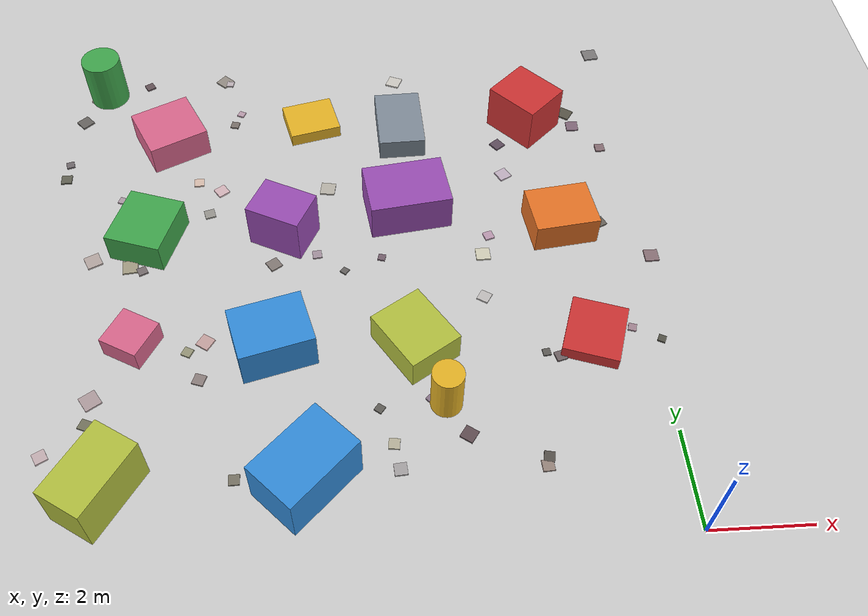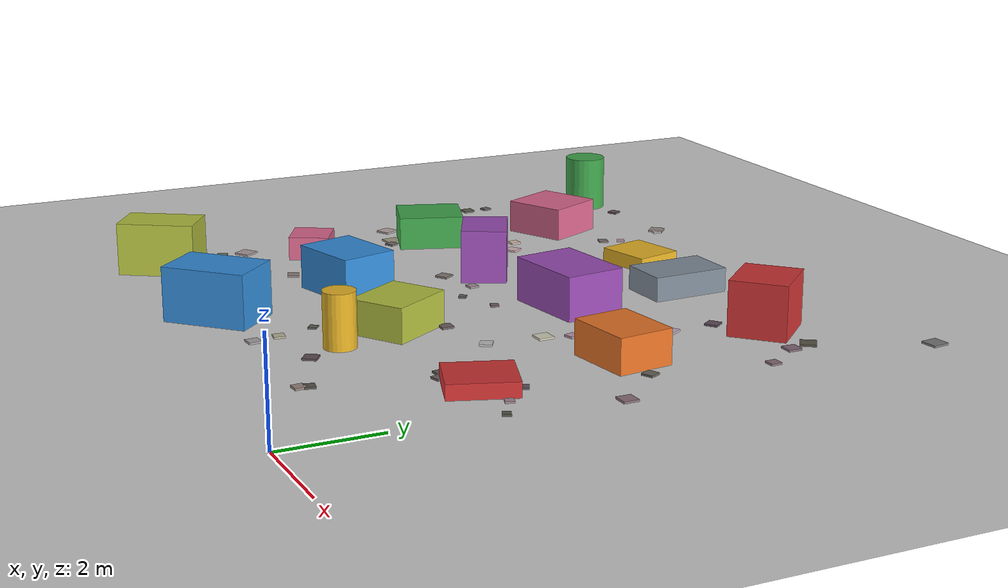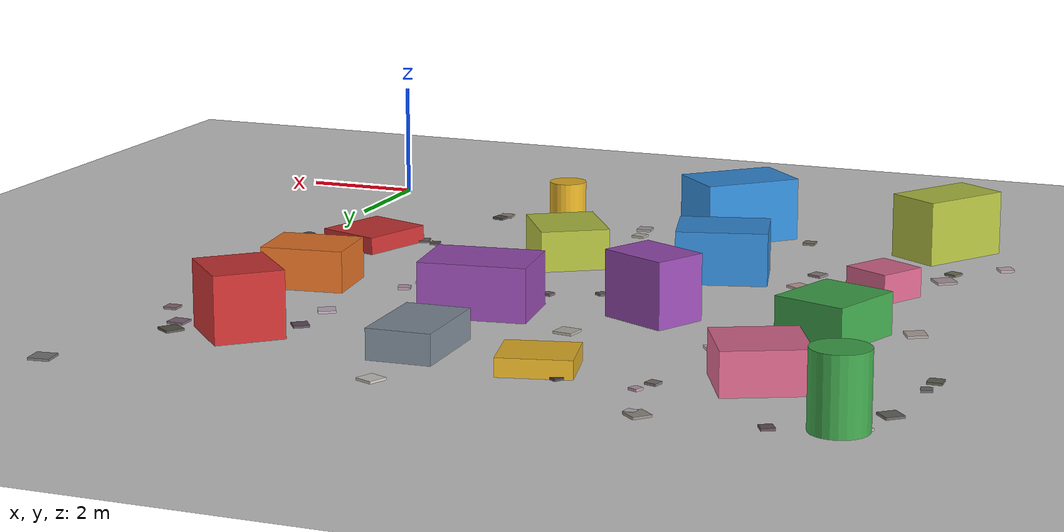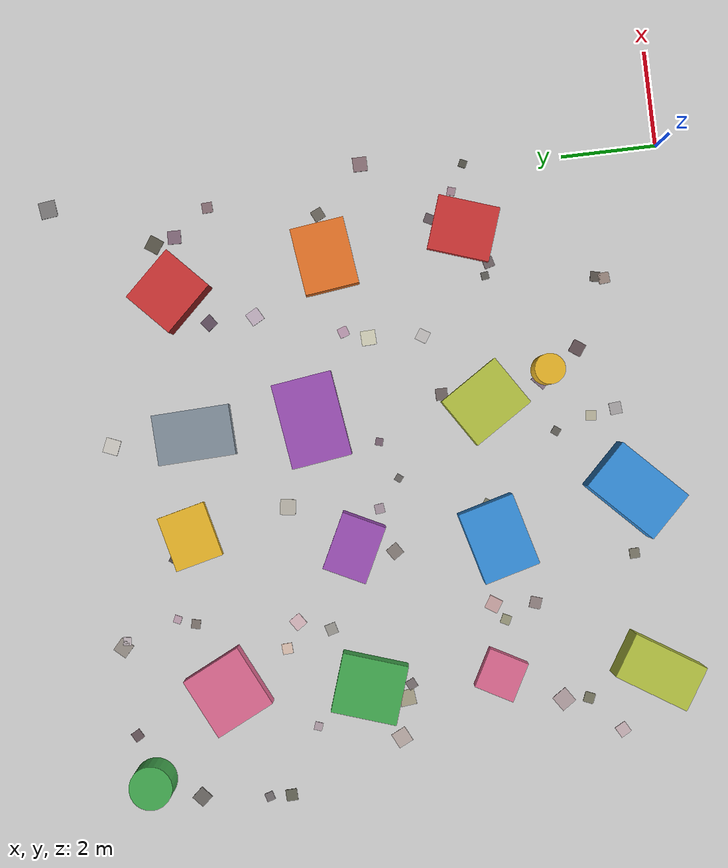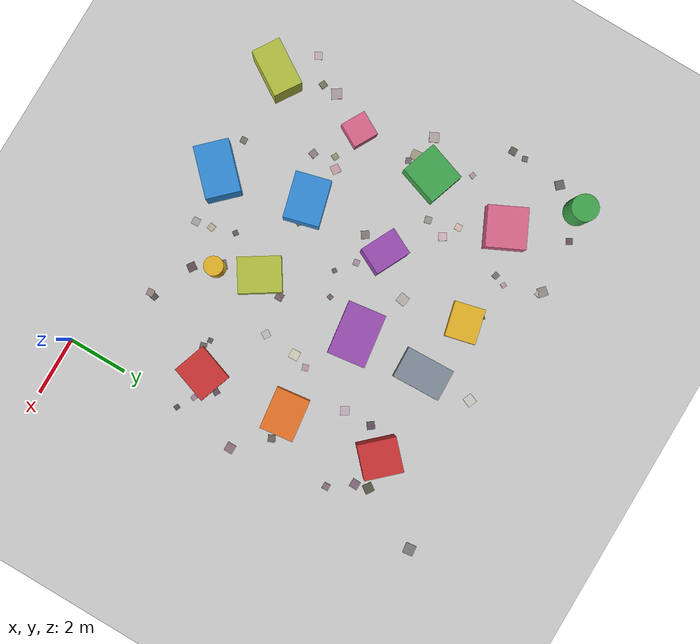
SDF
<sdf version="1.6">
 <world name="town_world">
  <model name="ground_plane">
   <static>true</static>
   <link name="link">
    <collision name="collision">
     <geometry><plane><normal>0 0 1</normal><size>60 60</size></plane></geometry>
     <surface><friction><ode><mu>1.0</mu><mu2>1.0</mu2></ode></friction></surface>
    </collision>
    <visual name="visual">
     <cast_shadows>false</cast_shadows>
     <geometry><plane><normal>0 0 1</normal><size>60 60</size></plane></geometry>
     <material>
      <script><uri>file://media/materials/scripts/gazebo.material</uri><name>Gazebo/CheckerBoard</name></script>
     </material>
    </visual>
   </link>
  </model>
  <model name="bld_4">
   <static>true</static>
   <pose>-10.88 1.31 0.55 0 0 1.003</pose>
   <link name="l">
    <collision name="c"><geometry><box><size>1.62 0.98 1.10</size></box></geometry></collision>
    <visual name="v">
     <geometry><box><size>1.62 0.98 1.10</size></box></geometry>
     <material><ambient>0.7 0.75 0.25 1</ambient><diffuse>0.7 0.75 0.25 1</diffuse></material>
    </visual>
   </link>
  </model>
  <model name="bld_5">
   <static>true</static>
   <pose>-10.63 4.55 0.25 0 0 1.068</pose>
   <link name="l">
    <collision name="c"><geometry><box><size>0.86 0.86 0.50</size></box></geometry></collision>
    <visual name="v">
     <geometry><box><size>0.86 0.86 0.50</size></box></geometry>
     <material><ambient>0.85 0.4 0.55 1</ambient><diffuse>0.85 0.4 0.55 1</diffuse></material>
    </visual>
   </link>
  </model>
  <model name="bld_6">
   <static>true</static>
   <pose>-10.57 7.31 0.35 0 0 1.247</pose>
   <link name="l">
    <collision name="c"><geometry><box><size>1.39 1.25 0.70</size></box></geometry></collision>
    <visual name="v">
     <geometry><box><size>1.39 1.25 0.70</size></box></geometry>
     <material><ambient>0.25 0.65 0.3 1</ambient><diffuse>0.25 0.65 0.3 1</diffuse></material>
    </visual>
   </link>
  </model>
  <model name="bld_7">
   <static>true</static>
   <pose>-10.30 10.24 0.35 0 0 0.452</pose>
   <link name="l">
    <collision name="c"><geometry><box><size>1.37 1.33 0.70</size></box></geometry></collision>
    <visual name="v">
     <geometry><box><size>1.37 1.33 0.70</size></box></geometry>
     <material><ambient>0.85 0.4 0.55 1</ambient><diffuse>0.85 0.4 0.55 1</diffuse></material>
    </visual>
   </link>
  </model>
  <model name="bld_12">
   <static>true</static>
   <pose>-7.11 1.35 0.55 0 0 0.775</pose>
   <link name="l">
    <collision name="c"><geometry><box><size>1.74 1.16 1.10</size></box></geometry></collision>
    <visual name="v">
     <geometry><box><size>1.74 1.16 1.10</size></box></geometry>
     <material><ambient>0.2 0.55 0.85 1</ambient><diffuse>0.2 0.55 0.85 1</diffuse></material>
    </visual>
   </link>
  </model>
  <model name="bld_13">
   <static>true</static>
   <pose>-7.78 4.29 0.45 0 0 0.261</pose>
   <link name="l">
    <collision name="c"><geometry><box><size>1.54 1.20 0.90</size></box></geometry></collision>
    <visual name="v">
     <geometry><box><size>1.54 1.20 0.90</size></box></geometry>
     <material><ambient>0.2 0.55 0.85 1</ambient><diffuse>0.2 0.55 0.85 1</diffuse></material>
    </visual>
   </link>
  </model>
  <model name="bld_14">
   <static>true</static>
   <pose>-7.60 7.28 0.55 0 0 1.109</pose>
   <link name="l">
    <collision name="c"><geometry><box><size>0.94 1.23 1.10</size></box></geometry></collision>
    <visual name="v">
     <geometry><box><size>0.94 1.23 1.10</size></box></geometry>
     <material><ambient>0.6 0.3 0.7 1</ambient><diffuse>0.6 0.3 0.7 1</diffuse></material>
    </visual>
   </link>
  </model>
  <model name="bld_15">
   <static>true</static>
   <pose>-7.01 10.68 0.15 0 0 0.238</pose>
   <link name="l">
    <collision name="c"><geometry><box><size>1.18 1.03 0.30</size></box></geometry></collision>
    <visual name="v">
     <geometry><box><size>1.18 1.03 0.30</size></box></geometry>
     <material><ambient>0.9 0.7 0.15 1</ambient><diffuse>0.9 0.7 0.15 1</diffuse></material>
    </visual>
   </link>
  </model>
  <model name="bld_21">
   <static>true</static>
   <pose>-4.93 4.21 0.35 0 0 0.572</pose>
   <link name="l">
    <collision name="c"><geometry><box><size>1.18 1.43 0.70</size></box></geometry></collision>
    <visual name="v">
     <geometry><box><size>1.18 1.43 0.70</size></box></geometry>
     <material><ambient>0.7 0.75 0.25 1</ambient><diffuse>0.7 0.75 0.25 1</diffuse></material>
    </visual>
   </link>
  </model>
  <model name="bld_22">
   <static>true</static>
   <pose>-4.88 7.85 0.45 0 0 0.135</pose>
   <link name="l">
    <collision name="c"><geometry><box><size>1.79 1.27 0.90</size></box></geometry></collision>
    <visual name="v">
     <geometry><box><size>1.79 1.27 0.90</size></box></geometry>
     <material><ambient>0.6 0.3 0.7 1</ambient><diffuse>0.6 0.3 0.7 1</diffuse></material>
    </visual>
   </link>
  </model>
  <model name="bld_23">
   <static>true</static>
   <pose>-4.90 10.34 0.25 0 0 0.036</pose>
   <link name="l">
    <collision name="c"><geometry><box><size>1.06 1.63 0.50</size></box></geometry></collision>
    <visual name="v">
     <geometry><box><size>1.06 1.63 0.50</size></box></geometry>
     <material><ambient>0.5 0.55 0.6 1</ambient><diffuse>0.5 0.55 0.6 1</diffuse></material>
    </visual>
   </link>
  </model>
  <model name="bld_27">
   <static>true</static>
   <pose>-1.26 4.23 0.15 0 0 1.240</pose>
   <link name="l">
    <collision name="c"><geometry><box><size>1.32 1.16 0.30</size></box></geometry></collision>
    <visual name="v">
     <geometry><box><size>1.32 1.16 0.30</size></box></geometry>
     <material><ambient>0.8 0.2 0.2 1</ambient><diffuse>0.8 0.2 0.2 1</diffuse></material>
    </visual>
   </link>
  </model>
  <model name="bld_28">
   <static>true</static>
   <pose>-1.53 7.19 0.35 0 0 0.126</pose>
   <link name="l">
    <collision name="c"><geometry><box><size>1.41 1.14 0.70</size></box></geometry></collision>
    <visual name="v">
     <geometry><box><size>1.41 1.14 0.70</size></box></geometry>
     <material><ambient>0.9 0.45 0.15 1</ambient><diffuse>0.9 0.45 0.15 1</diffuse></material>
    </visual>
   </link>
  </model>
  <model name="bld_29">
   <static>true</static>
   <pose>-1.90 10.47 0.55 0 0 0.753</pose>
   <link name="l">
    <collision name="c"><geometry><box><size>1.14 1.28 1.10</size></box></geometry></collision>
    <visual name="v">
     <geometry><box><size>1.14 1.28 1.10</size></box></geometry>
     <material><ambient>0.8 0.2 0.2 1</ambient><diffuse>0.8 0.2 0.2 1</diffuse></material>
    </visual>
   </link>
  </model>
  <model name="landmark_3">
   <static>true</static>
   <pose>-12.00 12.00 0.60 0 0 0</pose>
   <link name="l">
    <collision name="c">
     <geometry><cylinder><radius>0.45</radius><length>1.20</length></cylinder></geometry>
    </collision>
    <visual name="v">
     <geometry><cylinder><radius>0.45</radius><length>1.20</length></cylinder></geometry>
     <material><ambient>0.25 0.65 0.3 1</ambient><diffuse>0.25 0.65 0.3 1</diffuse></material>
    </visual>
   </link>
  </model>
  <model name="tank_8">
   <static>true</static>
   <pose>-4.41 2.85 0.55 0 0 0</pose>
   <link name="l">
    <collision name="c">
     <geometry><cylinder><radius>0.32</radius><length>1.10</length></cylinder></geometry>
    </collision>
    <visual name="v">
     <geometry><cylinder><radius>0.32</radius><length>1.10</length></cylinder></geometry>
     <material><ambient>0.9 0.7 0.15 1</ambient><diffuse>0.9 0.7 0.15 1</diffuse></material>
    </visual>
   </link>
  </model>
  <model name="ft_6">
   <static>true</static>
   <pose>-6.90 6.67 0.02 0 0 0.120</pose>
   <link name="l">
    <collision name="c"><geometry><box><size>0.20 0.20 0.04</size></box></geometry></collision>
    <visual name="v">
     <geometry><box><size>0.20 0.20 0.04</size></box></geometry>
     <material>
      <ambient>0.6399593680012304 0.5708872816822584 0.620188623328072 1</ambient>
      <diffuse>0.6399593680012304 0.5708872816822584 0.620188623328072 1</diffuse>
     </material>
    </visual>
   </link>
  </model>
  <model name="ft_11">
   <static>true</static>
   <pose>0.17 12.86 0.02 0 0 0.117</pose>
   <link name="l">
    <collision name="c"><geometry><box><size>0.35 0.35 0.04</size></box></geometry></collision>
    <visual name="v">
     <geometry><box><size>0.35 0.35 0.04</size></box></geometry>
     <material>
      <ambient>0.48210900817738717 0.47406306957370253 0.4754111695139394 1</ambient>
      <diffuse>0.48210900817738717 0.47406306957370253 0.4754111695139394 1</diffuse>
     </material>
    </visual>
   </link>
  </model>
  <model name="ft_12">
   <static>true</static>
   <pose>-10.65 6.43 0.02 0 0 0.439</pose>
   <link name="l">
    <collision name="c"><geometry><box><size>0.20 0.20 0.04</size></box></geometry></collision>
    <visual name="v">
     <geometry><box><size>0.20 0.20 0.04</size></box></geometry>
     <material>
      <ambient>0.46573214590223905 0.428787080923408 0.4314233538779299 1</ambient>
      <diffuse>0.46573214590223905 0.428787080923408 0.4314233538779299 1</diffuse>
     </material>
    </visual>
   </link>
  </model>
  <model name="ft_19">
   <static>true</static>
   <pose>-2.60 9.77 0.02 0 0 0.645</pose>
   <link name="l">
    <collision name="c"><geometry><box><size>0.26 0.26 0.04</size></box></geometry></collision>
    <visual name="v">
     <geometry><box><size>0.26 0.26 0.04</size></box></geometry>
     <material>
      <ambient>0.37206148826884883 0.3036451026613469 0.3671104922487789 1</ambient>
      <diffuse>0.37206148826884883 0.3036451026613469 0.3671104922487789 1</diffuse>
     </material>
    </visual>
   </link>
  </model>
  <model name="ft_22">
   <static>true</static>
   <pose>-0.44 4.39 0.02 0 0 1.275</pose>
   <link name="l">
    <collision name="c"><geometry><box><size>0.17 0.17 0.04</size></box></geometry></collision>
    <visual name="v">
     <geometry><box><size>0.17 0.17 0.04</size></box></geometry>
     <material>
      <ambient>0.6359230197742147 0.5182989579219701 0.5724076381204705 1</ambient>
      <diffuse>0.6359230197742147 0.5182989579219701 0.5724076381204705 1</diffuse>
     </material>
    </visual>
   </link>
  </model>
  <model name="ft_24">
   <static>true</static>
   <pose>-8.46 1.45 0.02 0 0 0.032</pose>
   <link name="l">
    <collision name="c"><geometry><box><size>0.21 0.21 0.04</size></box></geometry></collision>
    <visual name="v">
     <geometry><box><size>0.21 0.21 0.04</size></box></geometry>
     <material>
      <ambient>0.4709832009301672 0.4530254069300979 0.3958276431859622 1</ambient>
      <diffuse>0.4709832009301672 0.4530254069300979 0.3958276431859622 1</diffuse>
     </material>
    </visual>
   </link>
  </model>
  <model name="ft_30">
   <static>true</static>
   <pose>-9.05 12.27 0.02 0 0 1.405</pose>
   <link name="l">
    <collision name="c"><geometry><box><size>0.17 0.17 0.04</size></box></geometry></collision>
    <visual name="v">
     <geometry><box><size>0.17 0.17 0.04</size></box></geometry>
     <material>
      <ambient>0.7452372106391278 0.7006725788215511 0.722359697576769 1</ambient>
      <diffuse>0.7452372106391278 0.7006725788215511 0.722359697576769 1</diffuse>
     </material>
    </visual>
   </link>
  </model>
  <model name="ft_31">
   <static>true</static>
   <pose>-10.79 7.20 0.02 0 0 1.123</pose>
   <link name="l">
    <collision name="c"><geometry><box><size>0.15 0.15 0.04</size></box></geometry></collision>
    <visual name="v">
     <geometry><box><size>0.15 0.15 0.04</size></box></geometry>
     <material>
      <ambient>0.32539106264372236 0.2973672315962051 0.2627592527350926 1</ambient>
      <diffuse>0.32539106264372236 0.2973672315962051 0.2627592527350926 1</diffuse>
     </material>
    </visual>
   </link>
  </model>
  <model name="ft_35">
   <static>true</static>
   <pose>-2.29 3.89 0.02 0 0 0.127</pose>
   <link name="l">
    <collision name="c"><geometry><box><size>0.16 0.16 0.04</size></box></geometry></collision>
    <visual name="v">
     <geometry><box><size>0.16 0.16 0.04</size></box></geometry>
     <material>
      <ambient>0.3664691351278584 0.3580292428510184 0.3406087536675115 1</ambient>
      <diffuse>0.3664691351278584 0.3580292428510184 0.3406087536675115 1</diffuse>
     </material>
    </visual>
   </link>
  </model>
  <model name="ft_44">
   <static>true</static>
   <pose>-3.12 6.99 0.02 0 0 0.307</pose>
   <link name="l">
    <collision name="c"><geometry><box><size>0.21 0.21 0.04</size></box></geometry></collision>
    <visual name="v">
     <geometry><box><size>0.21 0.21 0.04</size></box></geometry>
     <material>
      <ambient>0.7323617477675497 0.5987438500683856 0.6891899730458133 1</ambient>
      <diffuse>0.7323617477675497 0.5987438500683856 0.6891899730458133 1</diffuse>
     </material>
    </visual>
   </link>
  </model>
  <model name="ft_47">
   <static>true</static>
   <pose>-11.37 2.75 0.02 0 0 1.172</pose>
   <link name="l">
    <collision name="c"><geometry><box><size>0.22 0.22 0.04</size></box></geometry></collision>
    <visual name="v">
     <geometry><box><size>0.22 0.22 0.04</size></box></geometry>
     <material>
      <ambient>0.4509825481073093 0.4468120801494546 0.3647173041535964 1</ambient>
      <diffuse>0.4509825481073093 0.4468120801494546 0.3647173041535964 1</diffuse>
     </material>
    </visual>
   </link>
  </model>
  <model name="ft_49">
   <static>true</static>
   <pose>-11.30 8.48 0.02 0 0 1.240</pose>
   <link name="l">
    <collision name="c"><geometry><box><size>0.17 0.17 0.04</size></box></geometry></collision>
    <visual name="v">
     <geometry><box><size>0.17 0.17 0.04</size></box></geometry>
     <material>
      <ambient>0.6793427122687294 0.6067541155414101 0.64895662002616 1</ambient>
      <diffuse>0.6793427122687294 0.6067541155414101 0.64895662002616 1</diffuse>
     </material>
    </visual>
   </link>
  </model>
  <model name="ft_68">
   <static>true</static>
   <pose>-9.30 7.97 0.02 0 0 0.270</pose>
   <link name="l">
    <collision name="c"><geometry><box><size>0.23 0.23 0.04</size></box></geometry></collision>
    <visual name="v">
     <geometry><box><size>0.23 0.23 0.04</size></box></geometry>
     <material>
      <ambient>0.593718704382455 0.5850774325610297 0.562518660428268 1</ambient>
      <diffuse>0.593718704382455 0.5850774325610297 0.562518660428268 1</diffuse>
     </material>
    </visual>
   </link>
  </model>
  <model name="ft_78">
   <static>true</static>
   <pose>0.11 4.08 0.02 0 0 1.131</pose>
   <link name="l">
    <collision name="c"><geometry><box><size>0.16 0.16 0.04</size></box></geometry></collision>
    <visual name="v">
     <geometry><box><size>0.16 0.16 0.04</size></box></geometry>
     <material>
      <ambient>0.32816257960606077 0.3230515126131668 0.28312068051801964 1</ambient>
      <diffuse>0.32816257960606077 0.3230515126131668 0.28312068051801964 1</diffuse>
     </material>
    </visual>
   </link>
  </model>
  <model name="ft_79">
   <static>true</static>
   <pose>-10.92 6.55 0.02 0 0 0.104</pose>
   <link name="l">
    <collision name="c"><geometry><box><size>0.33 0.33 0.04</size></box></geometry></collision>
    <visual name="v">
     <geometry><box><size>0.33 0.33 0.04</size></box></geometry>
     <material>
      <ambient>0.6416473937818465 0.6139593812491926 0.5166360644461299 1</ambient>
      <diffuse>0.6416473937818465 0.6139593812491926 0.5166360644461299 1</diffuse>
     </material>
    </visual>
   </link>
  </model>
  <model name="ft_82">
   <static>true</static>
   <pose>-4.58 2.95 0.02 0 0 0.754</pose>
   <link name="l">
    <collision name="c"><geometry><box><size>0.33 0.33 0.04</size></box></geometry></collision>
    <visual name="v">
     <geometry><box><size>0.33 0.33 0.04</size></box></geometry>
     <material>
      <ambient>0.5238417035798979 0.44570143089803693 0.5201043860301521 1</ambient>
      <diffuse>0.5238417035798979 0.44570143089803693 0.5201043860301521 1</diffuse>
     </material>
    </visual>
   </link>
  </model>
  <model name="ft_88">
   <static>true</static>
   <pose>-4.94 12.11 0.02 0 0 1.173</pose>
   <link name="l">
    <collision name="c"><geometry><box><size>0.32 0.32 0.04</size></box></geometry></collision>
    <visual name="v">
     <geometry><box><size>0.32 0.32 0.04</size></box></geometry>
     <material>
      <ambient>0.8070755347476833 0.7902436484356474 0.7639839601656194 1</ambient>
      <diffuse>0.8070755347476833 0.7902436484356474 0.7639839601656194 1</diffuse>
     </material>
    </visual>
   </link>
  </model>
  <model name="ft_97">
   <static>true</static>
   <pose>-11.34 3.28 0.02 0 0 0.589</pose>
   <link name="l">
    <collision name="c"><geometry><box><size>0.35 0.35 0.04</size></box></geometry></collision>
    <visual name="v">
     <geometry><box><size>0.35 0.35 0.04</size></box></geometry>
     <material>
      <ambient>0.6845836450888552 0.6131028805730561 0.6213837513433169 1</ambient>
      <diffuse>0.6845836450888552 0.6131028805730561 0.6213837513433169 1</diffuse>
     </material>
    </visual>
   </link>
  </model>
  <model name="ft_98">
   <static>true</static>
   <pose>-1.65 10.72 0.02 0 0 0.410</pose>
   <link name="l">
    <collision name="c"><geometry><box><size>0.17 0.17 0.04</size></box></geometry></collision>
    <visual name="v">
     <geometry><box><size>0.17 0.17 0.04</size></box></geometry>
     <material>
      <ambient>0.643318756457361 0.5372215628203274 0.6428826478869336 1</ambient>
      <diffuse>0.643318756457361 0.5372215628203274 0.6428826478869336 1</diffuse>
     </material>
    </visual>
   </link>
  </model>
  <model name="ft_102">
   <static>true</static>
   <pose>-8.86 10.79 0.02 0 0 1.338</pose>
   <link name="l">
    <collision name="c"><geometry><box><size>0.19 0.19 0.04</size></box></geometry></collision>
    <visual name="v">
     <geometry><box><size>0.19 0.19 0.04</size></box></geometry>
     <material>
      <ambient>0.48322430697927055 0.44468532462418847 0.4232512352843846 1</ambient>
      <diffuse>0.48322430697927055 0.44468532462418847 0.4232512352843846 1</diffuse>
     </material>
    </visual>
   </link>
  </model>
  <model name="ft_104">
   <static>true</static>
   <pose>-12.31 11.85 0.02 0 0 0.919</pose>
   <link name="l">
    <collision name="c"><geometry><box><size>0.20 0.20 0.04</size></box></geometry></collision>
    <visual name="v">
     <geometry><box><size>0.20 0.20 0.04</size></box></geometry>
     <material>
      <ambient>0.7808552234221287 0.7479347410262451 0.6858349901105885 1</ambient>
      <diffuse>0.7808552234221287 0.7479347410262451 0.6858349901105885 1</diffuse>
     </material>
    </visual>
   </link>
  </model>
  <model name="ft_111">
   <static>true</static>
   <pose>-11.74 6.76 0.02 0 0 0.452</pose>
   <link name="l">
    <collision name="c"><geometry><box><size>0.33 0.33 0.04</size></box></geometry></collision>
    <visual name="v">
     <geometry><box><size>0.33 0.33 0.04</size></box></geometry>
     <material>
      <ambient>0.7115425018846951 0.6549049096928533 0.6369846277514232 1</ambient>
      <diffuse>0.7115425018846951 0.6549049096928533 0.6369846277514232 1</diffuse>
     </material>
    </visual>
   </link>
  </model>
  <model name="ft_114">
   <static>true</static>
   <pose>-5.50 6.51 0.02 0 0 1.296</pose>
   <link name="l">
    <collision name="c"><geometry><box><size>0.16 0.16 0.04</size></box></geometry></collision>
    <visual name="v">
     <geometry><box><size>0.16 0.16 0.04</size></box></geometry>
     <material>
      <ambient>0.45868220250676417 0.3757239311606276 0.43072166424103153 1</ambient>
      <diffuse>0.45868220250676417 0.3757239311606276 0.43072166424103153 1</diffuse>
     </material>
    </visual>
   </link>
  </model>
  <model name="ft_118">
   <static>true</static>
   <pose>-2.02 3.79 0.02 0 0 0.269</pose>
   <link name="l">
    <collision name="c"><geometry><box><size>0.22 0.22 0.04</size></box></geometry></collision>
    <visual name="v">
     <geometry><box><size>0.22 0.22 0.04</size></box></geometry>
     <material>
      <ambient>0.43188461778996323 0.3824822743025664 0.3925776729018858 1</ambient>
      <diffuse>0.43188461778996323 0.3824822743025664 0.3925776729018858 1</diffuse>
     </material>
    </visual>
   </link>
  </model>
  <model name="ft_120">
   <static>true</static>
   <pose>-12.12 2.12 0.02 0 0 0.508</pose>
   <link name="l">
    <collision name="c"><geometry><box><size>0.25 0.25 0.04</size></box></geometry></collision>
    <visual name="v">
     <geometry><box><size>0.25 0.25 0.04</size></box></geometry>
     <material>
      <ambient>0.7707989357848736 0.6860583146863722 0.7020029701287273 1</ambient>
      <diffuse>0.7707989357848736 0.6860583146863722 0.7020029701287273 1</diffuse>
     </material>
    </visual>
   </link>
  </model>
  <model name="ft_121">
   <static>true</static>
   <pose>-0.96 4.92 0.02 0 0 1.094</pose>
   <link name="l">
    <collision name="c"><geometry><box><size>0.20 0.20 0.04</size></box></geometry></collision>
    <visual name="v">
     <geometry><box><size>0.20 0.20 0.04</size></box></geometry>
     <material>
      <ambient>0.3886146759661602 0.33685537879727584 0.36084434366437584 1</ambient>
      <diffuse>0.3886146759661602 0.33685537879727584 0.36084434366437584 1</diffuse>
     </material>
    </visual>
   </link>
  </model>
  <model name="ft_126">
   <static>true</static>
   <pose>-12.67 9.21 0.02 0 0 0.035</pose>
   <link name="l">
    <collision name="c"><geometry><box><size>0.24 0.24 0.04</size></box></geometry></collision>
    <visual name="v">
     <geometry><box><size>0.24 0.24 0.04</size></box></geometry>
     <material>
      <ambient>0.383471304925471 0.382005008705833 0.32949490198295994 1</ambient>
      <diffuse>0.383471304925471 0.382005008705833 0.32949490198295994 1</diffuse>
     </material>
    </visual>
   </link>
  </model>
  <model name="ft_127">
   <static>true</static>
   <pose>-6.31 6.19 0.02 0 0 0.922</pose>
   <link name="l">
    <collision name="c"><geometry><box><size>0.15 0.15 0.04</size></box></geometry></collision>
    <visual name="v">
     <geometry><box><size>0.15 0.15 0.04</size></box></geometry>
     <material>
      <ambient>0.3953705470621759 0.3837380593390795 0.3717401918576612 1</ambient>
      <diffuse>0.3953705470621759 0.3837380593390795 0.3717401918576612 1</diffuse>
     </material>
    </visual>
   </link>
  </model>
  <model name="ft_138">
   <static>true</static>
   <pose>-8.72 11.16 0.02 0 0 1.132</pose>
   <link name="l">
    <collision name="c"><geometry><box><size>0.16 0.16 0.04</size></box></geometry></collision>
    <visual name="v">
     <geometry><box><size>0.16 0.16 0.04</size></box></geometry>
     <material>
      <ambient>0.7290361492378941 0.6113947974139708 0.6768662177183803 1</ambient>
      <diffuse>0.7290361492378941 0.6113947974139708 0.6768662177183803 1</diffuse>
     </material>
    </visual>
   </link>
  </model>
  <model name="ft_144">
   <static>true</static>
   <pose>-4.03 2.14 0.02 0 0 0.955</pose>
   <link name="l">
    <collision name="c"><geometry><box><size>0.28 0.28 0.04</size></box></geometry></collision>
    <visual name="v">
     <geometry><box><size>0.28 0.28 0.04</size></box></geometry>
     <material>
      <ambient>0.3758496848572876 0.30609195267888306 0.32270396700725207 1</ambient>
      <diffuse>0.3758496848572876 0.30609195267888306 0.32270396700725207 1</diffuse>
     </material>
    </visual>
   </link>
  </model>
  <model name="ft_150">
   <static>true</static>
   <pose>-4.66 5.09 0.02 0 0 1.570</pose>
   <link name="l">
    <collision name="c"><geometry><box><size>0.25 0.25 0.04</size></box></geometry></collision>
    <visual name="v">
     <geometry><box><size>0.25 0.25 0.04</size></box></geometry>
     <material>
      <ambient>0.4280904613758588 0.38235000956465587 0.3789297634298402 1</ambient>
      <diffuse>0.4280904613758588 0.38235000956465587 0.3789297634298402 1</diffuse>
     </material>
    </visual>
   </link>
  </model>
  <model name="ft_157">
   <static>true</static>
   <pose>-2.63 1.41 0.02 0 0 0.073</pose>
   <link name="l">
    <collision name="c"><geometry><box><size>0.23 0.23 0.04</size></box></geometry></collision>
    <visual name="v">
     <geometry><box><size>0.23 0.23 0.04</size></box></geometry>
     <material>
      <ambient>0.5944264339642207 0.5229148043082253 0.4884402614793927 1</ambient>
      <diffuse>0.5944264339642207 0.5229148043082253 0.4884402614793927 1</diffuse>
     </material>
    </visual>
   </link>
  </model>
  <model name="ft_159">
   <static>true</static>
   <pose>-9.18 4.52 0.02 0 0 0.995</pose>
   <link name="l">
    <collision name="c"><geometry><box><size>0.29 0.29 0.04</size></box></geometry></collision>
    <visual name="v">
     <geometry><box><size>0.29 0.29 0.04</size></box></geometry>
     <material>
      <ambient>0.7757933915301229 0.6335133815245859 0.6267594758752593 1</ambient>
      <diffuse>0.7757933915301229 0.6335133815245859 0.6267594758752593 1</diffuse>
     </material>
    </visual>
   </link>
  </model>
  <model name="ft_161">
   <static>true</static>
   <pose>-12.65 9.67 0.02 0 0 0.290</pose>
   <link name="l">
    <collision name="c"><geometry><box><size>0.18 0.18 0.04</size></box></geometry></collision>
    <visual name="v">
     <geometry><box><size>0.18 0.18 0.04</size></box></geometry>
     <material>
      <ambient>0.4356075431202417 0.4103538729303747 0.4236240229617693 1</ambient>
      <diffuse>0.4356075431202417 0.4103538729303747 0.4236240229617693 1</diffuse>
     </material>
    </visual>
   </link>
  </model>
  <model name="ft_165">
   <static>true</static>
   <pose>-0.72 10.29 0.02 0 0 1.549</pose>
   <link name="l">
    <collision name="c"><geometry><box><size>0.28 0.28 0.04</size></box></geometry></collision>
    <visual name="v">
     <geometry><box><size>0.28 0.28 0.04</size></box></geometry>
     <material>
      <ambient>0.5061998799657074 0.4059042167000881 0.47272652542902666 1</ambient>
      <diffuse>0.5061998799657074 0.4059042167000881 0.47272652542902666 1</diffuse>
     </material>
    </visual>
   </link>
  </model>
  <model name="ft_168">
   <static>true</static>
   <pose>-5.38 1.49 0.02 0 0 0.083</pose>
   <link name="l">
    <collision name="c"><geometry><box><size>0.25 0.25 0.04</size></box></geometry></collision>
    <visual name="v">
     <geometry><box><size>0.25 0.25 0.04</size></box></geometry>
     <material>
      <ambient>0.6517247569516899 0.6373877196731228 0.6404526742201214 1</ambient>
      <diffuse>0.6517247569516899 0.6373877196731228 0.6404526742201214 1</diffuse>
     </material>
    </visual>
   </link>
  </model>
  <model name="ft_172">
   <static>true</static>
   <pose>-0.60 7.23 0.02 0 0 0.439</pose>
   <link name="l">
    <collision name="c"><geometry><box><size>0.24 0.24 0.04</size></box></geometry></collision>
    <visual name="v">
     <geometry><box><size>0.24 0.24 0.04</size></box></geometry>
     <material>
      <ambient>0.41318845205586047 0.39292319338368503 0.35814229196390973 1</ambient>
      <diffuse>0.41318845205586047 0.39292319338368503 0.35814229196390973 1</diffuse>
     </material>
    </visual>
   </link>
  </model>
  <model name="ft_174">
   <static>true</static>
   <pose>-9.07 8.65 0.02 0 0 0.591</pose>
   <link name="l">
    <collision name="c"><geometry><box><size>0.27 0.27 0.04</size></box></geometry></collision>
    <visual name="v">
     <geometry><box><size>0.27 0.27 0.04</size></box></geometry>
     <material>
      <ambient>0.8358325178390325 0.7098075347632931 0.7334190875210805 1</ambient>
      <diffuse>0.8358325178390325 0.7098075347632931 0.7334190875210805 1</diffuse>
     </material>
    </visual>
   </link>
  </model>
  <model name="ft_177">
   <static>true</static>
   <pose>-9.18 12.36 0.02 0 0 0.839</pose>
   <link name="l">
    <collision name="c"><geometry><box><size>0.31 0.31 0.04</size></box></geometry></collision>
    <visual name="v">
     <geometry><box><size>0.31 0.31 0.04</size></box></geometry>
     <material>
      <ambient>0.5787088618485874 0.5529036717710903 0.5208351914559854 1</ambient>
      <diffuse>0.5787088618485874 0.5529036717710903 0.5208351914559854 1</diffuse>
     </material>
    </visual>
   </link>
  </model>
  <model name="ft_182">
   <static>true</static>
   <pose>-5.47 2.02 0.02 0 0 1.449</pose>
   <link name="l">
    <collision name="c"><geometry><box><size>0.22 0.22 0.04</size></box></geometry></collision>
    <visual name="v">
     <geometry><box><size>0.22 0.22 0.04</size></box></geometry>
     <material>
      <ambient>0.7177831330174983 0.6972474614802578 0.6095851983866014 1</ambient>
      <diffuse>0.7177831330174983 0.6972474614802578 0.6095851983866014 1</diffuse>
     </material>
    </visual>
   </link>
  </model>
  <model name="ft_183">
   <static>true</static>
   <pose>-0.18 9.53 0.02 0 0 0.048</pose>
   <link name="l">
    <collision name="c"><geometry><box><size>0.22 0.22 0.04</size></box></geometry></collision>
    <visual name="v">
     <geometry><box><size>0.22 0.22 0.04</size></box></geometry>
     <material>
      <ambient>0.5280603160888592 0.43108092395780523 0.45579942987400357 1</ambient>
      <diffuse>0.5280603160888592 0.43108092395780523 0.45579942987400357 1</diffuse>
     </material>
    </visual>
   </link>
  </model>
  <model name="ft_184">
   <static>true</static>
   <pose>-5.71 2.79 0.02 0 0 0.921</pose>
   <link name="l">
    <collision name="c"><geometry><box><size>0.17 0.17 0.04</size></box></geometry></collision>
    <visual name="v">
     <geometry><box><size>0.17 0.17 0.04</size></box></geometry>
     <material>
      <ambient>0.3727862670588701 0.36315127533781677 0.3403892286061992 1</ambient>
      <diffuse>0.3727862670588701 0.36315127533781677 0.3403892286061992 1</diffuse>
     </material>
    </visual>
   </link>
  </model>
  <model name="ft_185">
   <static>true</static>
   <pose>-7.45 11.06 0.02 0 0 0.956</pose>
   <link name="l">
    <collision name="c"><geometry><box><size>0.21 0.21 0.04</size></box></geometry></collision>
    <visual name="v">
     <geometry><box><size>0.21 0.21 0.04</size></box></geometry>
     <material>
      <ambient>0.3082646561257522 0.27416206207787003 0.2831793215688106 1</ambient>
      <diffuse>0.3082646561257522 0.27416206207787003 0.2831793215688106 1</diffuse>
     </material>
    </visual>
   </link>
  </model>
  <model name="ft_186">
   <static>true</static>
   <pose>-9.60 8.94 0.02 0 0 0.055</pose>
   <link name="l">
    <collision name="c"><geometry><box><size>0.22 0.22 0.04</size></box></geometry></collision>
    <visual name="v">
     <geometry><box><size>0.22 0.22 0.04</size></box></geometry>
     <material>
      <ambient>0.84676860502691 0.7414648036958474 0.6820753762532179 1</ambient>
      <diffuse>0.84676860502691 0.7414648036958474 0.6820753762532179 1</diffuse>
     </material>
    </visual>
   </link>
  </model>
  <model name="ft_187">
   <static>true</static>
   <pose>-3.39 5.34 0.02 0 0 1.005</pose>
   <link name="l">
    <collision name="c"><geometry><box><size>0.25 0.25 0.04</size></box></geometry></collision>
    <visual name="v">
     <geometry><box><size>0.25 0.25 0.04</size></box></geometry>
     <material>
      <ambient>0.7573633666779982 0.7414286502827612 0.73660710221339 1</ambient>
      <diffuse>0.7573633666779982 0.7414286502827612 0.73660710221339 1</diffuse>
     </material>
    </visual>
   </link>
  </model>
  <model name="ft_191">
   <static>true</static>
   <pose>0.35 6.23 0.02 0 0 0.009</pose>
   <link name="l">
    <collision name="c"><geometry><box><size>0.30 0.30 0.04</size></box></geometry></collision>
    <visual name="v">
     <geometry><box><size>0.30 0.30 0.04</size></box></geometry>
     <material>
      <ambient>0.5400550040115466 0.4429592461362517 0.4663572147150479 1</ambient>
      <diffuse>0.5400550040115466 0.4429592461362517 0.4663572147150479 1</diffuse>
     </material>
    </visual>
   </link>
  </model>
  <model name="ft_192">
   <static>true</static>
   <pose>-7.83 6.45 0.02 0 0 0.584</pose>
   <link name="l">
    <collision name="c"><geometry><box><size>0.27 0.27 0.04</size></box></geometry></collision>
    <visual name="v">
     <geometry><box><size>0.27 0.27 0.04</size></box></geometry>
     <material>
      <ambient>0.5147680927421054 0.4789932993356098 0.4602773548767493 1</ambient>
      <diffuse>0.5147680927421054 0.4789932993356098 0.4602773548767493 1</diffuse>
     </material>
    </visual>
   </link>
  </model>
  <model name="ft_194">
   <static>true</static>
   <pose>-0.83 10.73 0.02 0 0 0.971</pose>
   <link name="l">
    <collision name="c"><geometry><box><size>0.31 0.31 0.04</size></box></geometry></collision>
    <visual name="v">
     <geometry><box><size>0.31 0.31 0.04</size></box></geometry>
     <material>
      <ambient>0.3441737037644338 0.33266702572828133 0.2806933758730204 1</ambient>
      <diffuse>0.3441737037644338 0.33266702572828133 0.2806933758730204 1</diffuse>
     </material>
    </visual>
   </link>
  </model>
  <model name="ft_195">
   <static>true</static>
   <pose>-3.30 6.48 0.02 0 0 0.034</pose>
   <link name="l">
    <collision name="c"><geometry><box><size>0.31 0.31 0.04</size></box></geometry></collision>
    <visual name="v">
     <geometry><box><size>0.31 0.31 0.04</size></box></geometry>
     <material>
      <ambient>0.8247723449631963 0.8125557983879217 0.7233384017314758 1</ambient>
      <diffuse>0.8247723449631963 0.8125557983879217 0.7233384017314758 1</diffuse>
     </material>
    </visual>
   </link>
  </model>
  <model name="ft_196">
   <static>true</static>
   <pose>-11.05 12.28 0.02 0 0 0.521</pose>
   <link name="l">
    <collision name="c"><geometry><box><size>0.21 0.21 0.04</size></box></geometry></collision>
    <visual name="v">
     <geometry><box><size>0.21 0.21 0.04</size></box></geometry>
     <material>
      <ambient>0.3903291142472846 0.32128851147724385 0.34083788690654077 1</ambient>
      <diffuse>0.3903291142472846 0.32128851147724385 0.34083788690654077 1</diffuse>
     </material>
    </visual>
   </link>
  </model>
  <model name="ft_202">
   <static>true</static>
   <pose>-9.25 3.64 0.02 0 0 1.240</pose>
   <link name="l">
    <collision name="c"><geometry><box><size>0.24 0.24 0.04</size></box></geometry></collision>
    <visual name="v">
     <geometry><box><size>0.24 0.24 0.04</size></box></geometry>
     <material>
      <ambient>0.5546754539351431 0.5004042798063286 0.49288552209488945 1</ambient>
      <diffuse>0.5546754539351431 0.5004042798063286 0.49288552209488945 1</diffuse>
     </material>
    </visual>
   </link>
  </model>
  <model name="ft_208">
   <static>true</static>
   <pose>-9.53 4.30 0.02 0 0 1.103</pose>
   <link name="l">
    <collision name="c"><geometry><box><size>0.20 0.20 0.04</size></box></geometry></collision>
    <visual name="v">
     <geometry><box><size>0.20 0.20 0.04</size></box></geometry>
     <material>
      <ambient>0.5878765635115928 0.5861968106124452 0.47461283307863184 1</ambient>
      <diffuse>0.5878765635115928 0.5861968106124452 0.47461283307863184 1</diffuse>
     </material>
    </visual>
   </link>
  </model>
  <model name="ft_210">
   <static>true</static>
   <pose>-6.64 8.58 0.02 0 0 1.410</pose>
   <link name="l">
    <collision name="c"><geometry><box><size>0.33 0.33 0.04</size></box></geometry></collision>
    <visual name="v">
     <geometry><box><size>0.33 0.33 0.04</size></box></geometry>
     <material>
      <ambient>0.7174746127926697 0.698546405910172 0.6566775044962747 1</ambient>
      <diffuse>0.7174746127926697 0.698546405910172 0.6566775044962747 1</diffuse>
     </material>
    </visual>
   </link>
  </model>
  <model name="ft_213">
   <static>true</static>
   <pose>-12.49 11.08 0.02 0 0 0.728</pose>
   <link name="l">
    <collision name="c"><geometry><box><size>0.30 0.30 0.04</size></box></geometry></collision>
    <visual name="v">
     <geometry><box><size>0.30 0.30 0.04</size></box></geometry>
     <material>
      <ambient>0.40685157783785764 0.39361521981272796 0.3773009052819474 1</ambient>
      <diffuse>0.40685157783785764 0.39361521981272796 0.3773009052819474 1</diffuse>
     </material>
    </visual>
   </link>
  </model>
  <model name="ft_216">
   <static>true</static>
   <pose>-7.10 4.39 0.02 0 0 0.997</pose>
   <link name="l">
    <collision name="c"><geometry><box><size>0.24 0.24 0.04</size></box></geometry></collision>
    <visual name="v">
     <geometry><box><size>0.24 0.24 0.04</size></box></geometry>
     <material>
      <ambient>0.48796737267519397 0.48291148399317735 0.3921802368622873 1</ambient>
      <diffuse>0.48796737267519397 0.48291148399317735 0.3921802368622873 1</diffuse>
     </material>
    </visual>
   </link>
  </model>
  <model name="ft_218">
   <static>true</static>
   <pose>-2.58 8.80 0.02 0 0 0.503</pose>
   <link name="l">
    <collision name="c"><geometry><box><size>0.29 0.29 0.04</size></box></geometry></collision>
    <visual name="v">
     <geometry><box><size>0.29 0.29 0.04</size></box></geometry>
     <material>
      <ambient>0.7558157413358431 0.6899727850915001 0.7536732900108005 1</ambient>
      <diffuse>0.7558157413358431 0.6899727850915001 0.7536732900108005 1</diffuse>
     </material>
    </visual>
   </link>
  </model>
  <model name="ft_219">
   <static>true</static>
   <pose>-2.58 1.59 0.02 0 0 1.367</pose>
   <link name="l">
    <collision name="c"><geometry><box><size>0.21 0.21 0.04</size></box></geometry></collision>
    <visual name="v">
     <geometry><box><size>0.21 0.21 0.04</size></box></geometry>
     <material>
      <ambient>0.3379775283837064 0.31635805030972547 0.29427161565620585 1</ambient>
      <diffuse>0.3379775283837064 0.31635805030972547 0.29427161565620585 1</diffuse>
     </material>
    </visual>
   </link>
  </model>
 </world>
</sdf>
